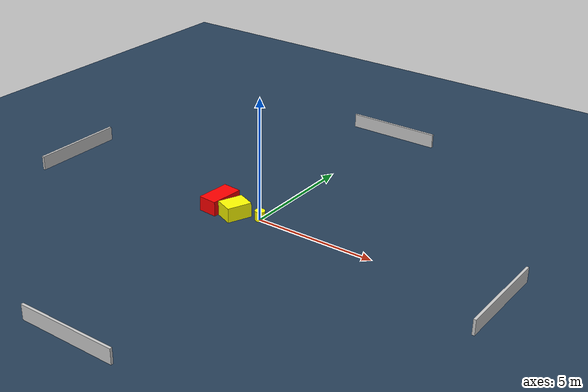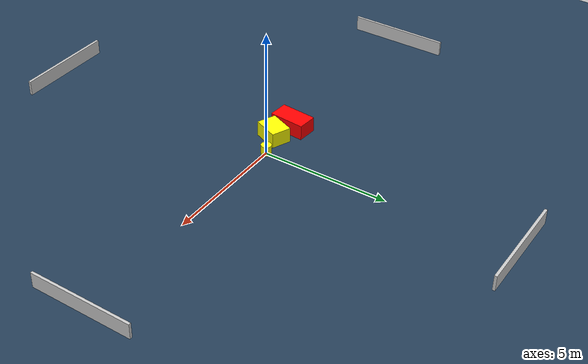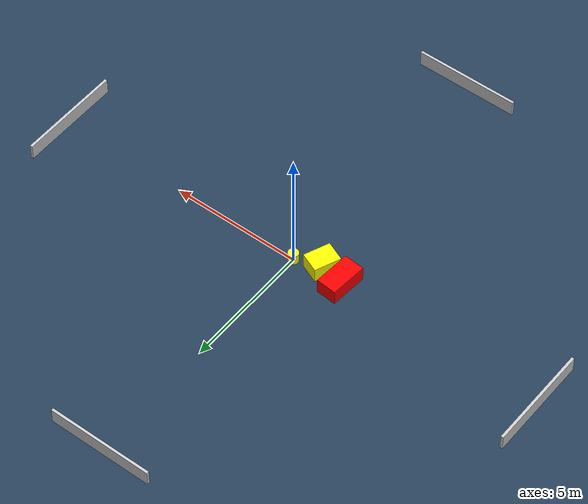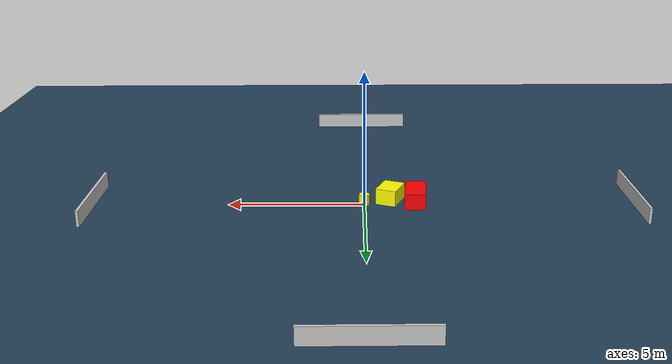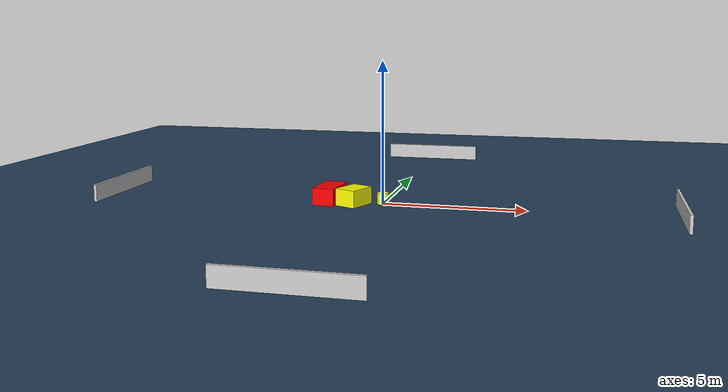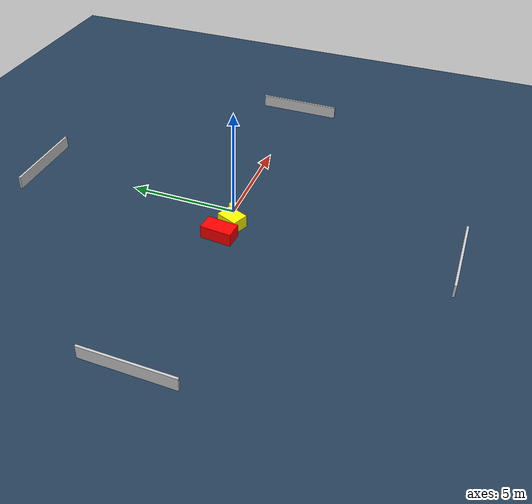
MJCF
<?xml version="1.0" ?>
<mujoco model="generated_environment">
  <option timestep="0.01" integrator="RK4" cone="elliptic"/>
  <default>
    <geom density="1"/>
  </default>
  <asset>
    <texture builtin="gradient" height="3072" name="skybox" rgb1="0.3 0.5 0.7" rgb2="0 0 0" type="skybox" width="512"/>
    <texture builtin="checker" height="300" name="groundplane" rgb1="0.2 0.3 0.4" rgb2="0.1 0.2 0.3" type="2d" width="300"/>
    <material name="groundplane" reflectance="0.2" texrepeat="5 5" texture="groundplane"/>
  </asset>
  <worldbody>
    <light dir="0 0 -1" directional="true" pos="0 0 1.5"/>
    <geom condim="3" friction="0.5 0.005 0.001" material="groundplane" name="floor" pos="0 0 0" size="0 0 0.05" type="plane"/>
    <body name="walls">
      <geom name="wall_1" condim="4" pos="-10.0 0.0 0.3" rgba="0.800000011920929 0.800000011920929 0.800000011920929 1.0" size="0.05 2.0 0.3" type="box"/>
      <geom name="wall_2" condim="4" pos="10.0 0.0 0.3" rgba="0.800000011920929 0.800000011920929 0.800000011920929 1.0" size="0.05 2.0 0.3" type="box"/>
      <geom name="wall_3" condim="4" pos="0.0 -10.0 0.3" rgba="0.800000011920929 0.800000011920929 0.800000011920929 1.0" size="2.0 0.05 0.3" type="box"/>
      <geom name="wall_4" condim="4" pos="0.0 10.0 0.3" rgba="0.800000011920929 0.800000011920929 0.800000011920929 1.0" size="2.0 0.05 0.3" type="box"/>
    </body>
    <body name="robot">
      <joint name="joint_x" type="slide" pos="0 0 0" axis="1 0 0"/>
      <joint name="joint_y" type="slide" pos="0 0 0" axis="0 1 0"/>
      <geom name="robot" type="cylinder" pos="0.0 0.0 0.2" size="0.2 0.2 0.0" mass="5.0" friction="1.0 0.005 0.0001" condim="4" rgba="1.0 1.0 0.0 1.0"/>
    </body>
    <body name="obstacle_1_movable">
      <geom name="obstacle_1_movable" condim="4" pos="-0.9725046028718746 -0.32516088836488405 0.3" euler="0 0 157.36090764192042" friction="0.0 0.005 0.001" rgba="1.0 1.0 0.0 1.0" size="0.3895089871867914 0.5131294593257677 0.3" type="box" mass="0.1"/>
      <joint type="free"/>
    </body>
    <body name="obstacle_2_static">
      <geom name="obstacle_2_static" condim="4" pos="-1.9005505108741445 -0.10148879714285367 0.3" euler="0 0 265.3471077782019" friction="0.0 0.005 0.001" rgba="1.0 0.0 0.0 1.0" size="0.7105737707340491 0.39280135059820576 0.3" type="box"/>
    </body>
  </worldbody>
  <actuator>
    <motor name="actuator_x" joint="joint_x" gear="1" ctrlrange="-1 1"/>
    <motor name="actuator_y" joint="joint_y" gear="1" ctrlrange="-1 1"/>
  </actuator>
</mujoco>
